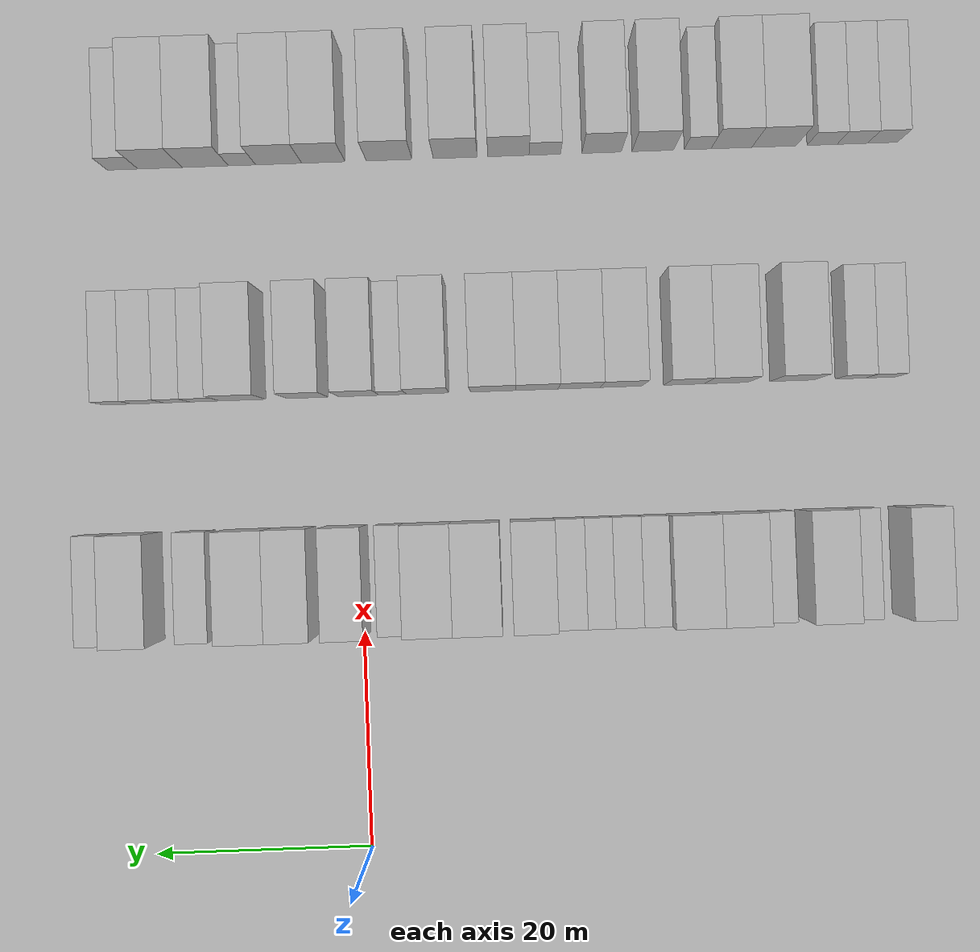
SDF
<sdf version="1.6">
 <world name="default">
  <include><name>ground_plane_1</name><uri>model://HANNAS_ground_plane</uri></include>
  <include>
   <name>ground_plane_2</name>
   <uri>model://HANNAS_ground_plane</uri>
   <pose>100 0 0  0 0 0</pose>
  </include>
  <model name="building_53">
   <static>1</static>
   <pose>25.0000 -51.0194 0 0.000000 0.000000 0.000000</pose>
   <link name="link">
    <pose>0 0 4.50 0 0 0</pose>
    <collision name="collision"><geometry><box><size>10.0000 3.7142 9.0000</size></box></geometry></collision>
    <visual name="visual">
     <cast_shadows>0</cast_shadows>
     <geometry><box><size>10.0000 3.7142 9.0000</size></box></geometry>
     <material>
      <script>
       <uri>model://HANNAS_wall/materials/scripts</uri>
       <uri>model://HANNAS_wall/materials/textures</uri>
       <name>vrc/HANNAS_wall</name>
      </script>
     </material>
    </visual>
   </link>
  </model>
  <model name="building_54">
   <static>1</static>
   <pose>25.0000 -45.9024 0 0.000000 0.000000 0.000000</pose>
   <link name="link">
    <pose>0 0 3.00 0 0 0</pose>
    <collision name="collision"><geometry><box><size>10.0000 2.5198 6.0000</size></box></geometry></collision>
    <visual name="visual">
     <cast_shadows>0</cast_shadows>
     <geometry><box><size>10.0000 2.5198 6.0000</size></box></geometry>
     <material>
      <script>
       <uri>model://HANNAS_wall/materials/scripts</uri>
       <uri>model://HANNAS_wall/materials/textures</uri>
       <name>vrc/HANNAS_wall</name>
      </script>
     </material>
    </visual>
   </link>
  </model>
  <model name="building_55">
   <static>1</static>
   <pose>25.0000 -42.5437 0 0.000000 0.000000 0.000000</pose>
   <link name="link">
    <pose>0 0 4.50 0 0 0</pose>
    <collision name="collision"><geometry><box><size>10.0000 4.1977 9.0000</size></box></geometry></collision>
    <visual name="visual">
     <cast_shadows>0</cast_shadows>
     <geometry><box><size>10.0000 4.1977 9.0000</size></box></geometry>
     <material>
      <script>
       <uri>model://HANNAS_wall/materials/scripts</uri>
       <uri>model://HANNAS_wall/materials/textures</uri>
       <name>vrc/HANNAS_wall</name>
      </script>
     </material>
    </visual>
   </link>
  </model>
  <model name="building_56">
   <static>1</static>
   <pose>25.0000 -38.0750 0 0.000000 0.000000 0.000000</pose>
   <link name="link">
    <pose>0 0 3.00 0 0 0</pose>
    <collision name="collision"><geometry><box><size>10.0000 2.7397 6.0000</size></box></geometry></collision>
    <visual name="visual">
     <cast_shadows>0</cast_shadows>
     <geometry><box><size>10.0000 2.7397 6.0000</size></box></geometry>
     <material>
      <script>
       <uri>model://HANNAS_wall/materials/scripts</uri>
       <uri>model://HANNAS_wall/materials/textures</uri>
       <name>vrc/HANNAS_wall</name>
      </script>
     </material>
    </visual>
   </link>
  </model>
  <model name="building_57">
   <static>1</static>
   <pose>25.0000 -34.6466 0 0.000000 0.000000 0.000000</pose>
   <link name="link">
    <pose>0 0 4.50 0 0 0</pose>
    <collision name="collision"><geometry><box><size>10.0000 4.1170 9.0000</size></box></geometry></collision>
    <visual name="visual">
     <cast_shadows>0</cast_shadows>
     <geometry><box><size>10.0000 4.1170 9.0000</size></box></geometry>
     <material>
      <script>
       <uri>model://HANNAS_wall/materials/scripts</uri>
       <uri>model://HANNAS_wall/materials/textures</uri>
       <name>vrc/HANNAS_wall</name>
      </script>
     </material>
    </visual>
   </link>
  </model>
  <model name="building_58">
   <static>1</static>
   <pose>25.0000 -30.3721 0 0.000000 0.000000 0.000000</pose>
   <link name="link">
    <pose>0 0 4.50 0 0 0</pose>
    <collision name="collision"><geometry><box><size>10.0000 4.4320 9.0000</size></box></geometry></collision>
    <visual name="visual">
     <cast_shadows>0</cast_shadows>
     <geometry><box><size>10.0000 4.4320 9.0000</size></box></geometry>
     <material>
      <script>
       <uri>model://HANNAS_wall/materials/scripts</uri>
       <uri>model://HANNAS_wall/materials/textures</uri>
       <name>vrc/HANNAS_wall</name>
      </script>
     </material>
    </visual>
   </link>
  </model>
  <model name="building_59">
   <static>1</static>
   <pose>25.0000 -26.8985 0 0.000000 0.000000 0.000000</pose>
   <link name="link">
    <pose>0 0 3.00 0 0 0</pose>
    <collision name="collision"><geometry><box><size>10.0000 2.5152 6.0000</size></box></geometry></collision>
    <visual name="visual">
     <cast_shadows>0</cast_shadows>
     <geometry><box><size>10.0000 2.5152 6.0000</size></box></geometry>
     <material>
      <script>
       <uri>model://HANNAS_wall/materials/scripts</uri>
       <uri>model://HANNAS_wall/materials/textures</uri>
       <name>vrc/HANNAS_wall</name>
      </script>
     </material>
    </visual>
   </link>
  </model>
  <model name="building_60">
   <static>1</static>
   <pose>25.0000 -24.3489 0 0.000000 0.000000 0.000000</pose>
   <link name="link">
    <pose>0 0 3.00 0 0 0</pose>
    <collision name="collision"><geometry><box><size>10.0000 2.5841 6.0000</size></box></geometry></collision>
    <visual name="visual">
     <cast_shadows>0</cast_shadows>
     <geometry><box><size>10.0000 2.5841 6.0000</size></box></geometry>
     <material>
      <script>
       <uri>model://HANNAS_wall/materials/scripts</uri>
       <uri>model://HANNAS_wall/materials/textures</uri>
       <name>vrc/HANNAS_wall</name>
      </script>
     </material>
    </visual>
   </link>
  </model>
  <model name="building_61">
   <static>1</static>
   <pose>25.0000 -21.8050 0 0.000000 0.000000 0.000000</pose>
   <link name="link">
    <pose>0 0 3.00 0 0 0</pose>
    <collision name="collision"><geometry><box><size>10.0000 2.5038 6.0000</size></box></geometry></collision>
    <visual name="visual">
     <cast_shadows>0</cast_shadows>
     <geometry><box><size>10.0000 2.5038 6.0000</size></box></geometry>
     <material>
      <script>
       <uri>model://HANNAS_wall/materials/scripts</uri>
       <uri>model://HANNAS_wall/materials/textures</uri>
       <name>vrc/HANNAS_wall</name>
      </script>
     </material>
    </visual>
   </link>
  </model>
  <model name="building_62">
   <static>1</static>
   <pose>25.0000 -19.1997 0 0.000000 0.000000 0.000000</pose>
   <link name="link">
    <pose>0 0 3.00 0 0 0</pose>
    <collision name="collision"><geometry><box><size>10.0000 2.7068 6.0000</size></box></geometry></collision>
    <visual name="visual">
     <cast_shadows>0</cast_shadows>
     <geometry><box><size>10.0000 2.7068 6.0000</size></box></geometry>
     <material>
      <script>
       <uri>model://HANNAS_wall/materials/scripts</uri>
       <uri>model://HANNAS_wall/materials/textures</uri>
       <name>vrc/HANNAS_wall</name>
      </script>
     </material>
    </visual>
   </link>
  </model>
  <model name="building_63">
   <static>1</static>
   <pose>25.0000 -15.8650 0 0.000000 0.000000 0.000000</pose>
   <link name="link">
    <pose>0 0 4.50 0 0 0</pose>
    <collision name="collision"><geometry><box><size>10.0000 3.9626 9.0000</size></box></geometry></collision>
    <visual name="visual">
     <cast_shadows>0</cast_shadows>
     <geometry><box><size>10.0000 3.9626 9.0000</size></box></geometry>
     <material>
      <script>
       <uri>model://HANNAS_wall/materials/scripts</uri>
       <uri>model://HANNAS_wall/materials/textures</uri>
       <name>vrc/HANNAS_wall</name>
      </script>
     </material>
    </visual>
   </link>
  </model>
  <model name="building_64">
   <static>1</static>
   <pose>25.0000 -10.6683 0 0.000000 0.000000 0.000000</pose>
   <link name="link">
    <pose>0 0 4.50 0 0 0</pose>
    <collision name="collision"><geometry><box><size>10.0000 4.4307 9.0000</size></box></geometry></collision>
    <visual name="visual">
     <cast_shadows>0</cast_shadows>
     <geometry><box><size>10.0000 4.4307 9.0000</size></box></geometry>
     <material>
      <script>
       <uri>model://HANNAS_wall/materials/scripts</uri>
       <uri>model://HANNAS_wall/materials/textures</uri>
       <name>vrc/HANNAS_wall</name>
      </script>
     </material>
    </visual>
   </link>
  </model>
  <model name="building_65">
   <static>1</static>
   <pose>25.0000 -6.2278 0 0.000000 0.000000 0.000000</pose>
   <link name="link">
    <pose>0 0 4.50 0 0 0</pose>
    <collision name="collision"><geometry><box><size>10.0000 4.4502 9.0000</size></box></geometry></collision>
    <visual name="visual">
     <cast_shadows>0</cast_shadows>
     <geometry><box><size>10.0000 4.4502 9.0000</size></box></geometry>
     <material>
      <script>
       <uri>model://HANNAS_wall/materials/scripts</uri>
       <uri>model://HANNAS_wall/materials/textures</uri>
       <name>vrc/HANNAS_wall</name>
      </script>
     </material>
    </visual>
   </link>
  </model>
  <model name="building_66">
   <static>1</static>
   <pose>25.0000 -2.7960 0 0.000000 0.000000 0.000000</pose>
   <link name="link">
    <pose>0 0 3.00 0 0 0</pose>
    <collision name="collision"><geometry><box><size>10.0000 2.4134 6.0000</size></box></geometry></collision>
    <visual name="visual">
     <cast_shadows>0</cast_shadows>
     <geometry><box><size>10.0000 2.4134 6.0000</size></box></geometry>
     <material>
      <script>
       <uri>model://HANNAS_wall/materials/scripts</uri>
       <uri>model://HANNAS_wall/materials/textures</uri>
       <name>vrc/HANNAS_wall</name>
      </script>
     </material>
    </visual>
   </link>
  </model>
  <model name="building_67">
   <static>1</static>
   <pose>25.0000 1.3086 0 0.000000 0.000000 0.000000</pose>
   <link name="link">
    <pose>0 0 4.50 0 0 0</pose>
    <collision name="collision"><geometry><box><size>10.0000 3.7959 9.0000</size></box></geometry></collision>
    <visual name="visual">
     <cast_shadows>0</cast_shadows>
     <geometry><box><size>10.0000 3.7959 9.0000</size></box></geometry>
     <material>
      <script>
       <uri>model://HANNAS_wall/materials/scripts</uri>
       <uri>model://HANNAS_wall/materials/textures</uri>
       <name>vrc/HANNAS_wall</name>
      </script>
     </material>
    </visual>
   </link>
  </model>
  <model name="building_68">
   <static>1</static>
   <pose>25.0000 6.1942 0 0.000000 0.000000 0.000000</pose>
   <link name="link">
    <pose>0 0 4.50 0 0 0</pose>
    <collision name="collision"><geometry><box><size>10.0000 3.9752 9.0000</size></box></geometry></collision>
    <visual name="visual">
     <cast_shadows>0</cast_shadows>
     <geometry><box><size>10.0000 3.9752 9.0000</size></box></geometry>
     <material>
      <script>
       <uri>model://HANNAS_wall/materials/scripts</uri>
       <uri>model://HANNAS_wall/materials/textures</uri>
       <name>vrc/HANNAS_wall</name>
      </script>
     </material>
    </visual>
   </link>
  </model>
  <model name="building_69">
   <static>1</static>
   <pose>25.0000 10.4083 0 0.000000 0.000000 0.000000</pose>
   <link name="link">
    <pose>0 0 4.50 0 0 0</pose>
    <collision name="collision"><geometry><box><size>10.0000 4.4530 9.0000</size></box></geometry></collision>
    <visual name="visual">
     <cast_shadows>0</cast_shadows>
     <geometry><box><size>10.0000 4.4530 9.0000</size></box></geometry>
     <material>
      <script>
       <uri>model://HANNAS_wall/materials/scripts</uri>
       <uri>model://HANNAS_wall/materials/textures</uri>
       <name>vrc/HANNAS_wall</name>
      </script>
     </material>
    </visual>
   </link>
  </model>
  <model name="building_70">
   <static>1</static>
   <pose>25.0000 15.1208 0 0.000000 0.000000 0.000000</pose>
   <link name="link">
    <pose>0 0 3.00 0 0 0</pose>
    <collision name="collision"><geometry><box><size>10.0000 2.9721 6.0000</size></box></geometry></collision>
    <visual name="visual">
     <cast_shadows>0</cast_shadows>
     <geometry><box><size>10.0000 2.9721 6.0000</size></box></geometry>
     <material>
      <script>
       <uri>model://HANNAS_wall/materials/scripts</uri>
       <uri>model://HANNAS_wall/materials/textures</uri>
       <name>vrc/HANNAS_wall</name>
      </script>
     </material>
    </visual>
   </link>
  </model>
  <model name="building_71">
   <static>1</static>
   <pose>25.0000 20.6719 0 0.000000 0.000000 0.000000</pose>
   <link name="link">
    <pose>0 0 4.50 0 0 0</pose>
    <collision name="collision"><geometry><box><size>10.0000 4.1301 9.0000</size></box></geometry></collision>
    <visual name="visual">
     <cast_shadows>0</cast_shadows>
     <geometry><box><size>10.0000 4.1301 9.0000</size></box></geometry>
     <material>
      <script>
       <uri>model://HANNAS_wall/materials/scripts</uri>
       <uri>model://HANNAS_wall/materials/textures</uri>
       <name>vrc/HANNAS_wall</name>
      </script>
     </material>
    </visual>
   </link>
  </model>
  <model name="building_72">
   <static>1</static>
   <pose>25.0000 24.1890 0 0.000000 0.000000 0.000000</pose>
   <link name="link">
    <pose>0 0 3.00 0 0 0</pose>
    <collision name="collision"><geometry><box><size>10.0000 2.9042 6.0000</size></box></geometry></collision>
    <visual name="visual">
     <cast_shadows>0</cast_shadows>
     <geometry><box><size>10.0000 2.9042 6.0000</size></box></geometry>
     <material>
      <script>
       <uri>model://HANNAS_wall/materials/scripts</uri>
       <uri>model://HANNAS_wall/materials/textures</uri>
       <name>vrc/HANNAS_wall</name>
      </script>
     </material>
    </visual>
   </link>
  </model>
  <model name="building_182">
   <static>1</static>
   <pose>47.0000 -48.9003 0 0.000000 0.000000 0.000000</pose>
   <link name="link">
    <pose>0 0 3.00 0 0 0</pose>
    <collision name="collision"><geometry><box><size>10.0000 2.7919 6.0000</size></box></geometry></collision>
    <visual name="visual">
     <cast_shadows>0</cast_shadows>
     <geometry><box><size>10.0000 2.7919 6.0000</size></box></geometry>
     <material>
      <script>
       <uri>model://HANNAS_wall/materials/scripts</uri>
       <uri>model://HANNAS_wall/materials/textures</uri>
       <name>vrc/HANNAS_wall</name>
      </script>
     </material>
    </visual>
   </link>
  </model>
  <model name="building_183">
   <static>1</static>
   <pose>47.0000 -46.1006 0 0.000000 0.000000 0.000000</pose>
   <link name="link">
    <pose>0 0 3.00 0 0 0</pose>
    <collision name="collision"><geometry><box><size>10.0000 2.8075 6.0000</size></box></geometry></collision>
    <visual name="visual">
     <cast_shadows>0</cast_shadows>
     <geometry><box><size>10.0000 2.8075 6.0000</size></box></geometry>
     <material>
      <script>
       <uri>model://HANNAS_wall/materials/scripts</uri>
       <uri>model://HANNAS_wall/materials/textures</uri>
       <name>vrc/HANNAS_wall</name>
      </script>
     </material>
    </visual>
   </link>
  </model>
  <model name="building_184">
   <static>1</static>
   <pose>47.0000 -40.6389 0 0.000000 0.000000 0.000000</pose>
   <link name="link">
    <pose>0 0 4.50 0 0 0</pose>
    <collision name="collision"><geometry><box><size>10.0000 4.1160 9.0000</size></box></geometry></collision>
    <visual name="visual">
     <cast_shadows>0</cast_shadows>
     <geometry><box><size>10.0000 4.1160 9.0000</size></box></geometry>
     <material>
      <script>
       <uri>model://HANNAS_wall/materials/scripts</uri>
       <uri>model://HANNAS_wall/materials/textures</uri>
       <name>vrc/HANNAS_wall</name>
      </script>
     </material>
    </visual>
   </link>
  </model>
  <model name="building_185">
   <static>1</static>
   <pose>47.0000 -34.4962 0 0.000000 0.000000 0.000000</pose>
   <link name="link">
    <pose>0 0 4.50 0 0 0</pose>
    <collision name="collision"><geometry><box><size>10.0000 4.1692 9.0000</size></box></geometry></collision>
    <visual name="visual">
     <cast_shadows>0</cast_shadows>
     <geometry><box><size>10.0000 4.1692 9.0000</size></box></geometry>
     <material>
      <script>
       <uri>model://HANNAS_wall/materials/scripts</uri>
       <uri>model://HANNAS_wall/materials/textures</uri>
       <name>vrc/HANNAS_wall</name>
      </script>
     </material>
    </visual>
   </link>
  </model>
  <model name="building_186">
   <static>1</static>
   <pose>47.0000 -30.5336 0 0.000000 0.000000 0.000000</pose>
   <link name="link">
    <pose>0 0 4.50 0 0 0</pose>
    <collision name="collision"><geometry><box><size>10.0000 3.7560 9.0000</size></box></geometry></collision>
    <visual name="visual">
     <cast_shadows>0</cast_shadows>
     <geometry><box><size>10.0000 3.7560 9.0000</size></box></geometry>
     <material>
      <script>
       <uri>model://HANNAS_wall/materials/scripts</uri>
       <uri>model://HANNAS_wall/materials/textures</uri>
       <name>vrc/HANNAS_wall</name>
      </script>
     </material>
    </visual>
   </link>
  </model>
  <model name="building_187">
   <static>1</static>
   <pose>47.0000 -24.6870 0 0.000000 0.000000 0.000000</pose>
   <link name="link">
    <pose>0 0 4.50 0 0 0</pose>
    <collision name="collision"><geometry><box><size>10.0000 3.9372 9.0000</size></box></geometry></collision>
    <visual name="visual">
     <cast_shadows>0</cast_shadows>
     <geometry><box><size>10.0000 3.9372 9.0000</size></box></geometry>
     <material>
      <script>
       <uri>model://HANNAS_wall/materials/scripts</uri>
       <uri>model://HANNAS_wall/materials/textures</uri>
       <name>vrc/HANNAS_wall</name>
      </script>
     </material>
    </visual>
   </link>
  </model>
  <model name="building_188">
   <static>1</static>
   <pose>47.0000 -20.7539 0 0.000000 0.000000 0.000000</pose>
   <link name="link">
    <pose>0 0 4.50 0 0 0</pose>
    <collision name="collision"><geometry><box><size>10.0000 3.9291 9.0000</size></box></geometry></collision>
    <visual name="visual">
     <cast_shadows>0</cast_shadows>
     <geometry><box><size>10.0000 3.9291 9.0000</size></box></geometry>
     <material>
      <script>
       <uri>model://HANNAS_wall/materials/scripts</uri>
       <uri>model://HANNAS_wall/materials/textures</uri>
       <name>vrc/HANNAS_wall</name>
      </script>
     </material>
    </visual>
   </link>
  </model>
  <model name="building_189">
   <static>1</static>
   <pose>47.0000 -16.8063 0 0.000000 0.000000 0.000000</pose>
   <link name="link">
    <pose>0 0 4.50 0 0 0</pose>
    <collision name="collision"><geometry><box><size>10.0000 3.9661 9.0000</size></box></geometry></collision>
    <visual name="visual">
     <cast_shadows>0</cast_shadows>
     <geometry><box><size>10.0000 3.9661 9.0000</size></box></geometry>
     <material>
      <script>
       <uri>model://HANNAS_wall/materials/scripts</uri>
       <uri>model://HANNAS_wall/materials/textures</uri>
       <name>vrc/HANNAS_wall</name>
      </script>
     </material>
    </visual>
   </link>
  </model>
  <model name="building_190">
   <static>1</static>
   <pose>47.0000 -12.7256 0 0.000000 0.000000 0.000000</pose>
   <link name="link">
    <pose>0 0 4.50 0 0 0</pose>
    <collision name="collision"><geometry><box><size>10.0000 4.1952 9.0000</size></box></geometry></collision>
    <visual name="visual">
     <cast_shadows>0</cast_shadows>
     <geometry><box><size>10.0000 4.1952 9.0000</size></box></geometry>
     <material>
      <script>
       <uri>model://HANNAS_wall/materials/scripts</uri>
       <uri>model://HANNAS_wall/materials/textures</uri>
       <name>vrc/HANNAS_wall</name>
      </script>
     </material>
    </visual>
   </link>
  </model>
  <model name="building_191">
   <static>1</static>
   <pose>47.0000 -6.6469 0 0.000000 0.000000 0.000000</pose>
   <link name="link">
    <pose>0 0 4.50 0 0 0</pose>
    <collision name="collision"><geometry><box><size>10.0000 3.9621 9.0000</size></box></geometry></collision>
    <visual name="visual">
     <cast_shadows>0</cast_shadows>
     <geometry><box><size>10.0000 3.9621 9.0000</size></box></geometry>
     <material>
      <script>
       <uri>model://HANNAS_wall/materials/scripts</uri>
       <uri>model://HANNAS_wall/materials/textures</uri>
       <name>vrc/HANNAS_wall</name>
      </script>
     </material>
    </visual>
   </link>
  </model>
  <model name="building_192">
   <static>1</static>
   <pose>47.0000 -3.3890 0 0.000000 0.000000 0.000000</pose>
   <link name="link">
    <pose>0 0 3.00 0 0 0</pose>
    <collision name="collision"><geometry><box><size>10.0000 2.5537 6.0000</size></box></geometry></collision>
    <visual name="visual">
     <cast_shadows>0</cast_shadows>
     <geometry><box><size>10.0000 2.5537 6.0000</size></box></geometry>
     <material>
      <script>
       <uri>model://HANNAS_wall/materials/scripts</uri>
       <uri>model://HANNAS_wall/materials/textures</uri>
       <name>vrc/HANNAS_wall</name>
      </script>
     </material>
    </visual>
   </link>
  </model>
  <model name="building_193">
   <static>1</static>
   <pose>47.0000 -0.2139 0 0.000000 0.000000 0.000000</pose>
   <link name="link">
    <pose>0 0 4.50 0 0 0</pose>
    <collision name="collision"><geometry><box><size>10.0000 3.7965 9.0000</size></box></geometry></collision>
    <visual name="visual">
     <cast_shadows>0</cast_shadows>
     <geometry><box><size>10.0000 3.7965 9.0000</size></box></geometry>
     <material>
      <script>
       <uri>model://HANNAS_wall/materials/scripts</uri>
       <uri>model://HANNAS_wall/materials/textures</uri>
       <name>vrc/HANNAS_wall</name>
      </script>
     </material>
    </visual>
   </link>
  </model>
  <model name="building_194">
   <static>1</static>
   <pose>47.0000 4.5946 0 0.000000 0.000000 0.000000</pose>
   <link name="link">
    <pose>0 0 4.50 0 0 0</pose>
    <collision name="collision"><geometry><box><size>10.0000 3.8204 9.0000</size></box></geometry></collision>
    <visual name="visual">
     <cast_shadows>0</cast_shadows>
     <geometry><box><size>10.0000 3.8204 9.0000</size></box></geometry>
     <material>
      <script>
       <uri>model://HANNAS_wall/materials/scripts</uri>
       <uri>model://HANNAS_wall/materials/textures</uri>
       <name>vrc/HANNAS_wall</name>
      </script>
     </material>
    </visual>
   </link>
  </model>
  <model name="building_195">
   <static>1</static>
   <pose>47.0000 10.6218 0 0.000000 0.000000 0.000000</pose>
   <link name="link">
    <pose>0 0 4.50 0 0 0</pose>
    <collision name="collision"><geometry><box><size>10.0000 4.2340 9.0000</size></box></geometry></collision>
    <visual name="visual">
     <cast_shadows>0</cast_shadows>
     <geometry><box><size>10.0000 4.2340 9.0000</size></box></geometry>
     <material>
      <script>
       <uri>model://HANNAS_wall/materials/scripts</uri>
       <uri>model://HANNAS_wall/materials/textures</uri>
       <name>vrc/HANNAS_wall</name>
      </script>
     </material>
    </visual>
   </link>
  </model>
  <model name="building_196">
   <static>1</static>
   <pose>47.0000 14.1522 0 0.000000 0.000000 0.000000</pose>
   <link name="link">
    <pose>0 0 3.00 0 0 0</pose>
    <collision name="collision"><geometry><box><size>10.0000 2.8268 6.0000</size></box></geometry></collision>
    <visual name="visual">
     <cast_shadows>0</cast_shadows>
     <geometry><box><size>10.0000 2.8268 6.0000</size></box></geometry>
     <material>
      <script>
       <uri>model://HANNAS_wall/materials/scripts</uri>
       <uri>model://HANNAS_wall/materials/textures</uri>
       <name>vrc/HANNAS_wall</name>
      </script>
     </material>
    </visual>
   </link>
  </model>
  <model name="building_197">
   <static>1</static>
   <pose>47.0000 16.7693 0 0.000000 0.000000 0.000000</pose>
   <link name="link">
    <pose>0 0 3.00 0 0 0</pose>
    <collision name="collision"><geometry><box><size>10.0000 2.4074 6.0000</size></box></geometry></collision>
    <visual name="visual">
     <cast_shadows>0</cast_shadows>
     <geometry><box><size>10.0000 2.4074 6.0000</size></box></geometry>
     <material>
      <script>
       <uri>model://HANNAS_wall/materials/scripts</uri>
       <uri>model://HANNAS_wall/materials/textures</uri>
       <name>vrc/HANNAS_wall</name>
      </script>
     </material>
    </visual>
   </link>
  </model>
  <model name="building_198">
   <static>1</static>
   <pose>47.0000 19.4650 0 0.000000 0.000000 0.000000</pose>
   <link name="link">
    <pose>0 0 3.00 0 0 0</pose>
    <collision name="collision"><geometry><box><size>10.0000 2.9840 6.0000</size></box></geometry></collision>
    <visual name="visual">
     <cast_shadows>0</cast_shadows>
     <geometry><box><size>10.0000 2.9840 6.0000</size></box></geometry>
     <material>
      <script>
       <uri>model://HANNAS_wall/materials/scripts</uri>
       <uri>model://HANNAS_wall/materials/textures</uri>
       <name>vrc/HANNAS_wall</name>
      </script>
     </material>
    </visual>
   </link>
  </model>
  <model name="building_199">
   <static>1</static>
   <pose>47.0000 22.2750 0 0.000000 0.000000 0.000000</pose>
   <link name="link">
    <pose>0 0 3.00 0 0 0</pose>
    <collision name="collision"><geometry><box><size>10.0000 2.6359 6.0000</size></box></geometry></collision>
    <visual name="visual">
     <cast_shadows>0</cast_shadows>
     <geometry><box><size>10.0000 2.6359 6.0000</size></box></geometry>
     <material>
      <script>
       <uri>model://HANNAS_wall/materials/scripts</uri>
       <uri>model://HANNAS_wall/materials/textures</uri>
       <name>vrc/HANNAS_wall</name>
      </script>
     </material>
    </visual>
   </link>
  </model>
  <model name="building_298">
   <static>1</static>
   <pose>69.0000 -50.0200 0 0.000000 0.000000 0.000000</pose>
   <link name="link">
    <pose>0 0 3.00 0 0 0</pose>
    <collision name="collision"><geometry><box><size>10.0000 2.8169 6.0000</size></box></geometry></collision>
    <visual name="visual">
     <cast_shadows>0</cast_shadows>
     <geometry><box><size>10.0000 2.8169 6.0000</size></box></geometry>
     <material>
      <script>
       <uri>model://HANNAS_wall/materials/scripts</uri>
       <uri>model://HANNAS_wall/materials/textures</uri>
       <name>vrc/HANNAS_wall</name>
      </script>
     </material>
    </visual>
   </link>
  </model>
  <model name="building_299">
   <static>1</static>
   <pose>69.0000 -47.1899 0 0.000000 0.000000 0.000000</pose>
   <link name="link">
    <pose>0 0 3.00 0 0 0</pose>
    <collision name="collision"><geometry><box><size>10.0000 2.8433 6.0000</size></box></geometry></collision>
    <visual name="visual">
     <cast_shadows>0</cast_shadows>
     <geometry><box><size>10.0000 2.8433 6.0000</size></box></geometry>
     <material>
      <script>
       <uri>model://HANNAS_wall/materials/scripts</uri>
       <uri>model://HANNAS_wall/materials/textures</uri>
       <name>vrc/HANNAS_wall</name>
      </script>
     </material>
    </visual>
   </link>
  </model>
  <model name="building_300">
   <static>1</static>
   <pose>69.0000 -44.3497 0 0.000000 0.000000 0.000000</pose>
   <link name="link">
    <pose>0 0 3.00 0 0 0</pose>
    <collision name="collision"><geometry><box><size>10.0000 2.8371 6.0000</size></box></geometry></collision>
    <visual name="visual">
     <cast_shadows>0</cast_shadows>
     <geometry><box><size>10.0000 2.8371 6.0000</size></box></geometry>
     <material>
      <script>
       <uri>model://HANNAS_wall/materials/scripts</uri>
       <uri>model://HANNAS_wall/materials/textures</uri>
       <name>vrc/HANNAS_wall</name>
      </script>
     </material>
    </visual>
   </link>
  </model>
  <model name="building_301">
   <static>1</static>
   <pose>69.0000 -39.8486 0 0.000000 0.000000 0.000000</pose>
   <link name="link">
    <pose>0 0 4.50 0 0 0</pose>
    <collision name="collision"><geometry><box><size>10.0000 4.1651 9.0000</size></box></geometry></collision>
    <visual name="visual">
     <cast_shadows>0</cast_shadows>
     <geometry><box><size>10.0000 4.1651 9.0000</size></box></geometry>
     <material>
      <script>
       <uri>model://HANNAS_wall/materials/scripts</uri>
       <uri>model://HANNAS_wall/materials/textures</uri>
       <name>vrc/HANNAS_wall</name>
      </script>
     </material>
    </visual>
   </link>
  </model>
  <model name="building_302">
   <static>1</static>
   <pose>69.0000 -35.8485 0 0.000000 0.000000 0.000000</pose>
   <link name="link">
    <pose>0 0 4.50 0 0 0</pose>
    <collision name="collision"><geometry><box><size>10.0000 3.8351 9.0000</size></box></geometry></collision>
    <visual name="visual">
     <cast_shadows>0</cast_shadows>
     <geometry><box><size>10.0000 3.8351 9.0000</size></box></geometry>
     <material>
      <script>
       <uri>model://HANNAS_wall/materials/scripts</uri>
       <uri>model://HANNAS_wall/materials/textures</uri>
       <name>vrc/HANNAS_wall</name>
      </script>
     </material>
    </visual>
   </link>
  </model>
  <model name="building_303">
   <static>1</static>
   <pose>69.0000 -32.6710 0 0.000000 0.000000 0.000000</pose>
   <link name="link">
    <pose>0 0 3.00 0 0 0</pose>
    <collision name="collision"><geometry><box><size>10.0000 2.5200 6.0000</size></box></geometry></collision>
    <visual name="visual">
     <cast_shadows>0</cast_shadows>
     <geometry><box><size>10.0000 2.5200 6.0000</size></box></geometry>
     <material>
      <script>
       <uri>model://HANNAS_wall/materials/scripts</uri>
       <uri>model://HANNAS_wall/materials/textures</uri>
       <name>vrc/HANNAS_wall</name>
      </script>
     </material>
    </visual>
   </link>
  </model>
  <model name="building_304">
   <static>1</static>
   <pose>69.0000 -28.4626 0 0.000000 0.000000 0.000000</pose>
   <link name="link">
    <pose>0 0 4.50 0 0 0</pose>
    <collision name="collision"><geometry><box><size>10.0000 3.8969 9.0000</size></box></geometry></collision>
    <visual name="visual">
     <cast_shadows>0</cast_shadows>
     <geometry><box><size>10.0000 3.8969 9.0000</size></box></geometry>
     <material>
      <script>
       <uri>model://HANNAS_wall/materials/scripts</uri>
       <uri>model://HANNAS_wall/materials/textures</uri>
       <name>vrc/HANNAS_wall</name>
      </script>
     </material>
    </visual>
   </link>
  </model>
  <model name="building_305">
   <static>1</static>
   <pose>69.0000 -23.6665 0 0.000000 0.000000 0.000000</pose>
   <link name="link">
    <pose>0 0 4.50 0 0 0</pose>
    <collision name="collision"><geometry><box><size>10.0000 3.6952 9.0000</size></box></geometry></collision>
    <visual name="visual">
     <cast_shadows>0</cast_shadows>
     <geometry><box><size>10.0000 3.6952 9.0000</size></box></geometry>
     <material>
      <script>
       <uri>model://HANNAS_wall/materials/scripts</uri>
       <uri>model://HANNAS_wall/materials/textures</uri>
       <name>vrc/HANNAS_wall</name>
      </script>
     </material>
    </visual>
   </link>
  </model>
  <model name="building_306">
   <static>1</static>
   <pose>69.0000 -18.3402 0 0.000000 0.000000 0.000000</pose>
   <link name="link">
    <pose>0 0 3.00 0 0 0</pose>
    <collision name="collision"><geometry><box><size>10.0000 2.9575 6.0000</size></box></geometry></collision>
    <visual name="visual">
     <cast_shadows>0</cast_shadows>
     <geometry><box><size>10.0000 2.9575 6.0000</size></box></geometry>
     <material>
      <script>
       <uri>model://HANNAS_wall/materials/scripts</uri>
       <uri>model://HANNAS_wall/materials/textures</uri>
       <name>vrc/HANNAS_wall</name>
      </script>
     </material>
    </visual>
   </link>
  </model>
  <model name="building_307">
   <static>1</static>
   <pose>69.0000 -14.9384 0 0.000000 0.000000 0.000000</pose>
   <link name="link">
    <pose>0 0 4.50 0 0 0</pose>
    <collision name="collision"><geometry><box><size>10.0000 3.8461 9.0000</size></box></geometry></collision>
    <visual name="visual">
     <cast_shadows>0</cast_shadows>
     <geometry><box><size>10.0000 3.8461 9.0000</size></box></geometry>
     <material>
      <script>
       <uri>model://HANNAS_wall/materials/scripts</uri>
       <uri>model://HANNAS_wall/materials/textures</uri>
       <name>vrc/HANNAS_wall</name>
      </script>
     </material>
    </visual>
   </link>
  </model>
  <model name="building_308">
   <static>1</static>
   <pose>69.0000 -9.9584 0 0.000000 0.000000 0.000000</pose>
   <link name="link">
    <pose>0 0 4.50 0 0 0</pose>
    <collision name="collision"><geometry><box><size>10.0000 4.1141 9.0000</size></box></geometry></collision>
    <visual name="visual">
     <cast_shadows>0</cast_shadows>
     <geometry><box><size>10.0000 4.1141 9.0000</size></box></geometry>
     <material>
      <script>
       <uri>model://HANNAS_wall/materials/scripts</uri>
       <uri>model://HANNAS_wall/materials/textures</uri>
       <name>vrc/HANNAS_wall</name>
      </script>
     </material>
    </visual>
   </link>
  </model>
  <model name="building_309">
   <static>1</static>
   <pose>69.0000 -3.7661 0 0.000000 0.000000 0.000000</pose>
   <link name="link">
    <pose>0 0 4.50 0 0 0</pose>
    <collision name="collision"><geometry><box><size>10.0000 4.2704 9.0000</size></box></geometry></collision>
    <visual name="visual">
     <cast_shadows>0</cast_shadows>
     <geometry><box><size>10.0000 4.2704 9.0000</size></box></geometry>
     <material>
      <script>
       <uri>model://HANNAS_wall/materials/scripts</uri>
       <uri>model://HANNAS_wall/materials/textures</uri>
       <name>vrc/HANNAS_wall</name>
      </script>
     </material>
    </visual>
   </link>
  </model>
  <model name="building_310">
   <static>1</static>
   <pose>69.0000 2.3958 0 0.000000 0.000000 0.000000</pose>
   <link name="link">
    <pose>0 0 4.50 0 0 0</pose>
    <collision name="collision"><geometry><box><size>10.0000 4.0535 9.0000</size></box></geometry></collision>
    <visual name="visual">
     <cast_shadows>0</cast_shadows>
     <geometry><box><size>10.0000 4.0535 9.0000</size></box></geometry>
     <material>
      <script>
       <uri>model://HANNAS_wall/materials/scripts</uri>
       <uri>model://HANNAS_wall/materials/textures</uri>
       <name>vrc/HANNAS_wall</name>
      </script>
     </material>
    </visual>
   </link>
  </model>
  <model name="building_311">
   <static>1</static>
   <pose>69.0000 6.5796 0 0.000000 0.000000 0.000000</pose>
   <link name="link">
    <pose>0 0 4.50 0 0 0</pose>
    <collision name="collision"><geometry><box><size>10.0000 4.3141 9.0000</size></box></geometry></collision>
    <visual name="visual">
     <cast_shadows>0</cast_shadows>
     <geometry><box><size>10.0000 4.3141 9.0000</size></box></geometry>
     <material>
      <script>
       <uri>model://HANNAS_wall/materials/scripts</uri>
       <uri>model://HANNAS_wall/materials/textures</uri>
       <name>vrc/HANNAS_wall</name>
      </script>
     </material>
    </visual>
   </link>
  </model>
  <model name="building_312">
   <static>1</static>
   <pose>69.0000 10.0082 0 0.000000 0.000000 0.000000</pose>
   <link name="link">
    <pose>0 0 3.00 0 0 0</pose>
    <collision name="collision"><geometry><box><size>10.0000 2.5432 6.0000</size></box></geometry></collision>
    <visual name="visual">
     <cast_shadows>0</cast_shadows>
     <geometry><box><size>10.0000 2.5432 6.0000</size></box></geometry>
     <material>
      <script>
       <uri>model://HANNAS_wall/materials/scripts</uri>
       <uri>model://HANNAS_wall/materials/textures</uri>
       <name>vrc/HANNAS_wall</name>
      </script>
     </material>
    </visual>
   </link>
  </model>
  <model name="building_313">
   <static>1</static>
   <pose>69.0000 13.4496 0 0.000000 0.000000 0.000000</pose>
   <link name="link">
    <pose>0 0 4.50 0 0 0</pose>
    <collision name="collision"><geometry><box><size>10.0000 4.3396 9.0000</size></box></geometry></collision>
    <visual name="visual">
     <cast_shadows>0</cast_shadows>
     <geometry><box><size>10.0000 4.3396 9.0000</size></box></geometry>
     <material>
      <script>
       <uri>model://HANNAS_wall/materials/scripts</uri>
       <uri>model://HANNAS_wall/materials/textures</uri>
       <name>vrc/HANNAS_wall</name>
      </script>
     </material>
    </visual>
   </link>
  </model>
  <model name="building_314">
   <static>1</static>
   <pose>69.0000 17.6932 0 0.000000 0.000000 0.000000</pose>
   <link name="link">
    <pose>0 0 4.50 0 0 0</pose>
    <collision name="collision"><geometry><box><size>10.0000 4.1477 9.0000</size></box></geometry></collision>
    <visual name="visual">
     <cast_shadows>0</cast_shadows>
     <geometry><box><size>10.0000 4.1477 9.0000</size></box></geometry>
     <material>
      <script>
       <uri>model://HANNAS_wall/materials/scripts</uri>
       <uri>model://HANNAS_wall/materials/textures</uri>
       <name>vrc/HANNAS_wall</name>
      </script>
     </material>
    </visual>
   </link>
  </model>
  <model name="building_315">
   <static>1</static>
   <pose>69.0000 21.2041 0 0.000000 0.000000 0.000000</pose>
   <link name="link">
    <pose>0 0 3.00 0 0 0</pose>
    <collision name="collision"><geometry><box><size>10.0000 2.8740 6.0000</size></box></geometry></collision>
    <visual name="visual">
     <cast_shadows>0</cast_shadows>
     <geometry><box><size>10.0000 2.8740 6.0000</size></box></geometry>
     <material>
      <script>
       <uri>model://HANNAS_wall/materials/scripts</uri>
       <uri>model://HANNAS_wall/materials/textures</uri>
       <name>vrc/HANNAS_wall</name>
      </script>
     </material>
    </visual>
   </link>
  </model>
 </world>
</sdf>
